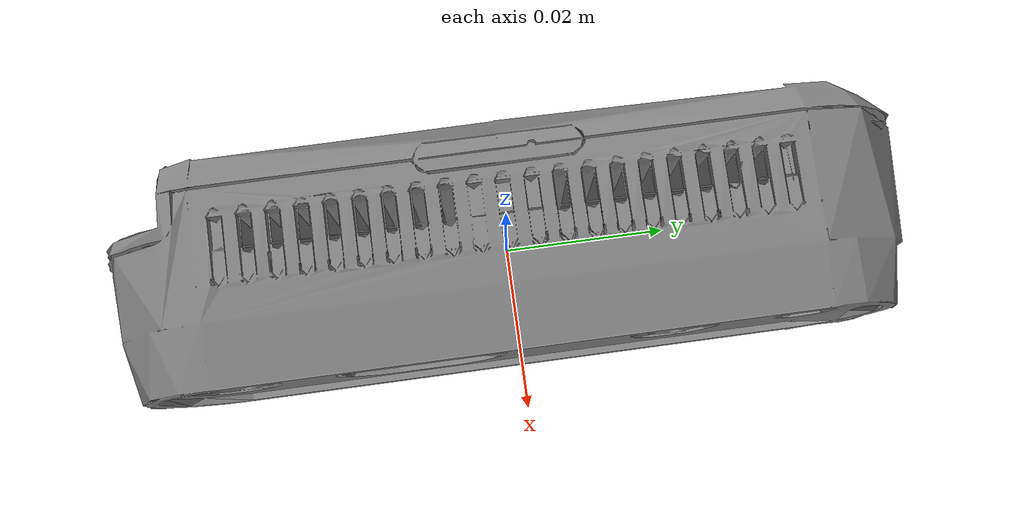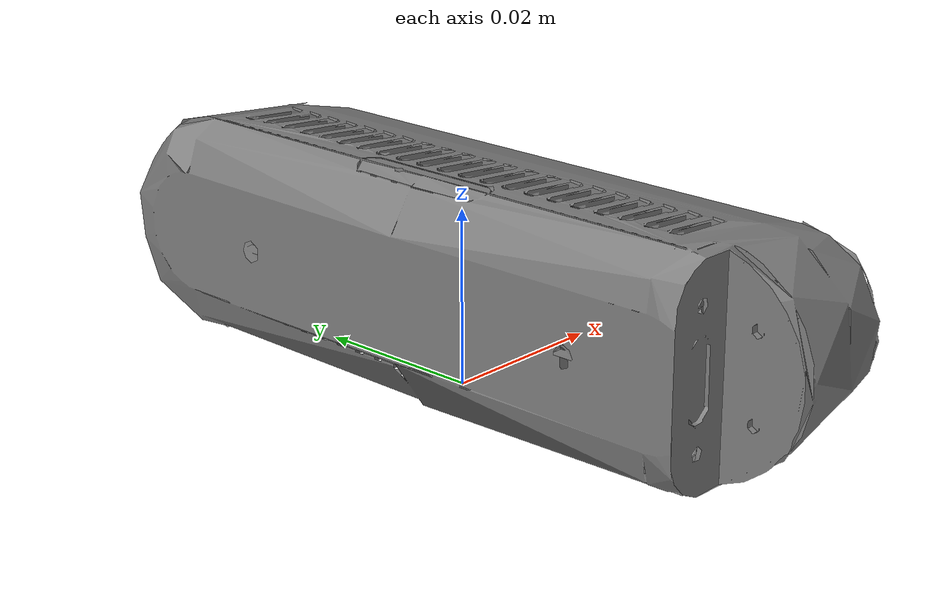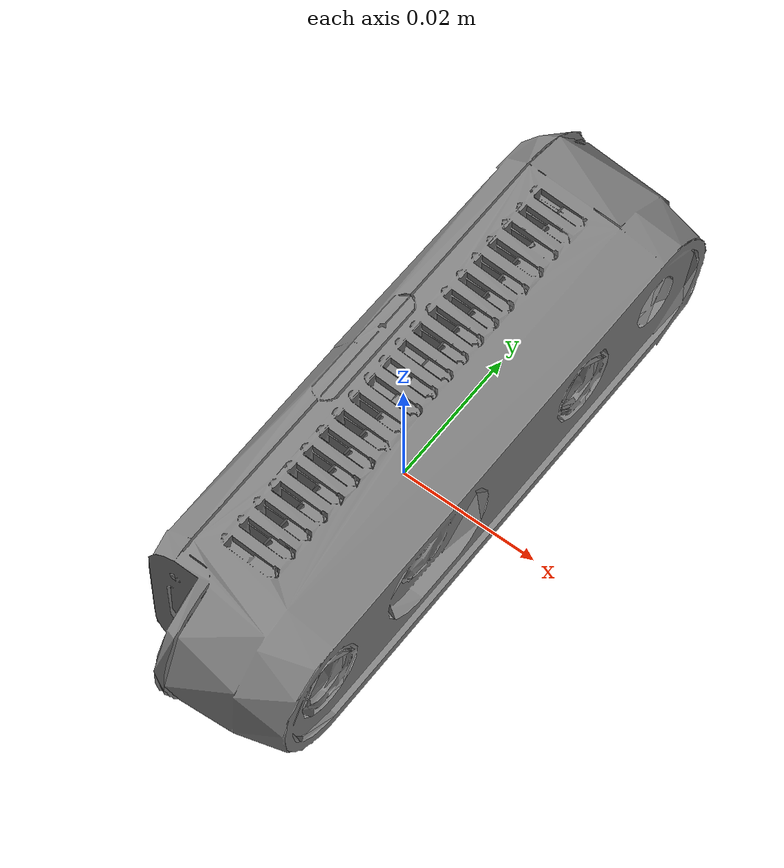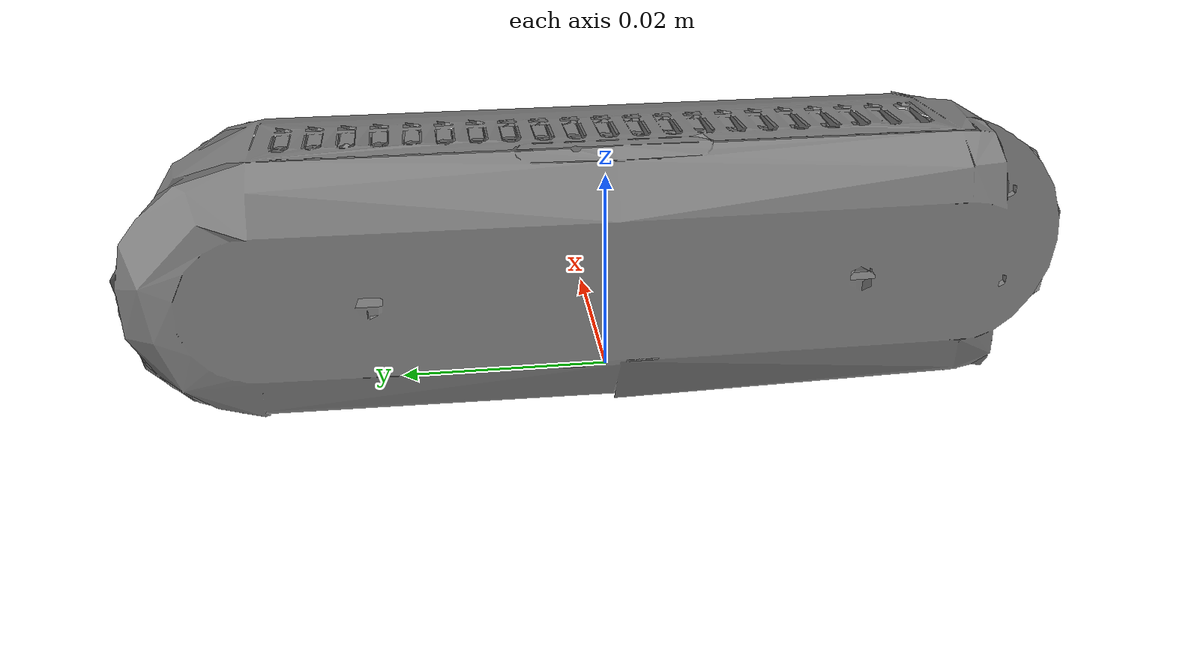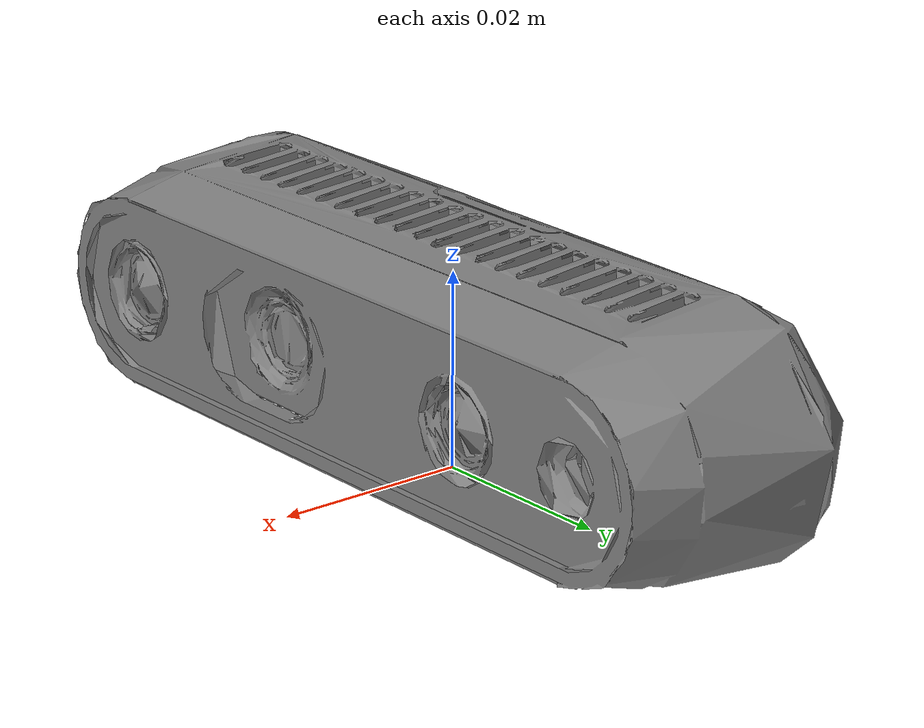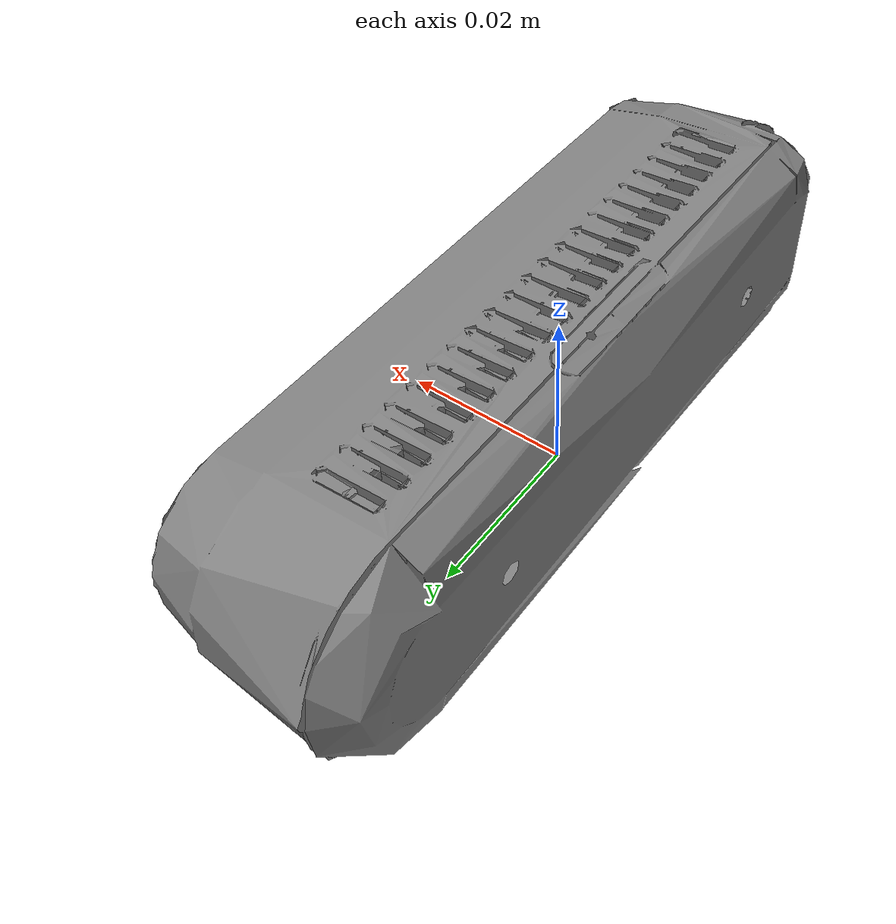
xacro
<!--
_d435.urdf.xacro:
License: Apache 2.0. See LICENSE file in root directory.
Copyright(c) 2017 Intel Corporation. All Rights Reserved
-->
<?xml version="1.0"?>
<robot name="realsense2_camera" xmlns:xacro="http://ros.org/wiki/xacro">
  <xacro:include filename="$(find realsense2_description)/urdf/_d435_with_map_link.urdf.xacro" />

  <xacro:macro name="camera_sensor" params="name:=camera topics_ns:=camera parent child *origin publish_pointcloud:=true">
    <joint name="${parent}_to_base_joint" type="fixed">
      <xacro:insert_block name="origin" />
      <parent link="${parent}" />
      <child link="${child}" />
    </joint>
    <link name="${child}" />
    <xacro:sensor_d435 name="${name}" topics_ns="${name}" parent="${child}" publish_pointcloud="${publish_pointcloud}">
      <xacro:insert_block name="origin" />
    </xacro:sensor_d435>
  </xacro:macro>

  <link name="map" />
  <xacro:camera_sensor name="camera" topics_ns="camera" parent="map" child="base_link" publish_pointcloud="true">
    <origin xyz="0 0 0" rpy="0 0 0" />
  </xacro:camera_sensor>

</robot>

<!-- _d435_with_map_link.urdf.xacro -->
<robot xmlns:xacro="http://www.ros.org/wiki/xacro">

  <xacro:include filename="$(find realsense2_description)/urdf/_d435.urdf.xacro"/>
  <xacro:include filename="$(find realsense2_description)/urdf/_d435_changed.gazebo.xacro"/>

  <!-- Set the reference link to the base link -->
  <xacro:property name="reference_link" value="base_link"/>

</robot>

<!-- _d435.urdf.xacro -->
<robot name="sensor_d435" xmlns:xacro="http://ros.org/wiki/xacro">
  <!--File includes-->
  <xacro:include filename="$(find realsense2_description)/urdf/_d435_changed.gazebo.xacro"/>

  <xacro:macro name="sensor_d435" params="name:=camera topics_ns:=camera parent *origin publish_pointcloud:=true">
    <xacro:property name="M_PI" value="3.1415926535897931" />

    <!-- The following values are approximate, and the camera node
     publishing TF values with actual calibrated camera extrinsic values -->
    <xacro:property name="d435_cam_depth_to_left_ir_offset" value="0.0"/>
    <xacro:property name="d435_cam_depth_to_right_ir_offset" value="-0.050"/>
    <xacro:property name="d435_cam_depth_to_color_offset" value="0.015"/>

    <!-- The following values model the aluminum peripherial case for the
    D435 camera, with the camera joint represented by the actual
    peripherial camera tripod mount -->
    <xacro:property name="d435_cam_width" value="0.090"/>
    <xacro:property name="d435_cam_height" value="0.025"/>
    <xacro:property name="d435_cam_depth" value="0.02505"/>
    <xacro:property name="d435_cam_mount_from_center_offset" value="0.0149"/>

    <!-- The following offset is relative the the physical D435 camera peripherial
    camera tripod mount -->
    <xacro:property name="d435_cam_depth_px" value="${d435_cam_mount_from_center_offset}"/>
    <xacro:property name="d435_cam_depth_py" value="0.0175"/>
    <xacro:property name="d435_cam_depth_pz" value="${d435_cam_height/2}"/>

    <material name="${name}_aluminum">
    <color rgba="0.5 0.5 0.5 1"/>
    </material>

    <!-- camera body, with origin at bottom screw mount -->
    <joint name="${name}_joint" type="fixed">
      <xacro:insert_block name="origin" />
      <parent link="${parent}"/>
      <child link="${name}_bottom_screw_frame" />
    </joint>
    <link name="${name}_bottom_screw_frame"/>

    <joint name="${name}_link_joint" type="fixed">
      <origin xyz="0 ${d435_cam_depth_py} ${d435_cam_depth_pz}" rpy="0 0 0"/>
      <parent link="${name}_bottom_screw_frame"/>
      <child link="${name}_link" />
    </joint>

    <link name="${name}_link">
      <visual>
      <origin xyz="${d435_cam_mount_from_center_offset} ${-d435_cam_depth_py} 0" rpy="${M_PI/2} 0 ${M_PI/2}"/>
        <geometry>
          <mesh filename="package://realsense2_description/meshes/d435.dae" />
        </geometry>
        <material name="${name}_aluminum"/>
      </visual>
      <collision>
        <origin xyz="0 ${-d435_cam_depth_py} 0" rpy="0 0 0"/>
        <geometry>
        <box size="${d435_cam_depth} ${d435_cam_width} ${d435_cam_height}"/>
        </geometry>
      </collision>
      <inertial>
        <!-- The following are not reliable values, and should not be used for modeling -->
        <mass value="0.564" />
        <origin xyz="0 0 0" />
        <inertia ixx="0.003881243" ixy="0.0" ixz="0.0" iyy="0.000498940" iyz="0.0" izz="0.003879257" />
      </inertial>
    </link>

    <!-- camera depth joints and links -->
    <joint name="${name}_depth_joint" type="fixed">
      <origin xyz="0 0 0" rpy="0 0 0"/>
      <parent link="${name}_link"/>
      <child link="${name}_depth_frame" />
    </joint>
    <link name="${name}_depth_frame"/>

    <joint name="${name}_depth_optical_joint" type="fixed">
      <origin xyz="0 0 0" rpy="${-M_PI/2} 0 ${-M_PI/2}" />
      <parent link="${name}_depth_frame" />
      <child link="${name}_depth_optical_frame" />
    </joint>
    <link name="${name}_depth_optical_frame"/>

    <!-- camera left IR joints and links -->
    <joint name="${name}_left_ir_joint" type="fixed">
      <origin xyz="0 ${d435_cam_depth_to_left_ir_offset} 0" rpy="0 0 0" />
      <parent link="${name}_depth_frame" />
      <child link="${name}_left_ir_frame" />
    </joint>
    <link name="${name}_left_ir_frame"/>

    <joint name="${name}_left_ir_optical_joint" type="fixed">
      <origin xyz="0 0 0" rpy="${-M_PI/2} 0 ${-M_PI/2}" />
      <parent link="${name}_left_ir_frame" />
      <child link="${name}_left_ir_optical_frame" />
    </joint>
    <link name="${name}_left_ir_optical_frame"/>

    <!-- camera right IR joints and links -->
    <joint name="${name}_right_ir_joint" type="fixed">
      <origin xyz="0 ${d435_cam_depth_to_right_ir_offset} 0" rpy="0 0 0" />
      <parent link="${name}_depth_frame" />
      <child link="${name}_right_ir_frame" />
    </joint>
    <link name="${name}_right_ir_frame"/>

    <joint name="${name}_right_ir_optical_joint" type="fixed">
      <origin xyz="0 0 0" rpy="${-M_PI/2} 0 ${-M_PI/2}" />
      <parent link="${name}_right_ir_frame" />
      <child link="${name}_right_ir_optical_frame" />
    </joint>
    <link name="${name}_right_ir_optical_frame"/>

    <!-- camera color joints and links -->
    <joint name="${name}_color_joint" type="fixed">
      <origin xyz="0 ${d435_cam_depth_to_color_offset} 0" rpy="0 0 0" />
      <parent link="${name}_depth_frame" />
      <child link="${name}_color_frame" />
    </joint>
    <link name="${name}_color_frame"/>

    <joint name="${name}_color_optical_joint" type="fixed">
      <origin xyz="0 0 0" rpy="${-M_PI/2} 0 ${-M_PI/2}" />
      <parent link="${name}_color_frame" />
      <child link="${name}_color_optical_frame" />
    </joint>
    <link name="${name}_color_optical_frame"/>

    <!-- Realsense Gazebo Plugin -->
    <xacro:gazebo_d435 camera_name="${name}" reference_link="${name}_link" topics_ns="${topics_ns}" depth_optical_frame="${name}_depth_optical_frame" color_optical_frame="${name}_color_optical_frame" infrared1_optical_frame="${name}_left_ir_optical_frame" infrared2_optical_frame="${name}_right_ir_optical_frame" publish_pointcloud="${publish_pointcloud}"/>

  </xacro:macro>
</robot>
